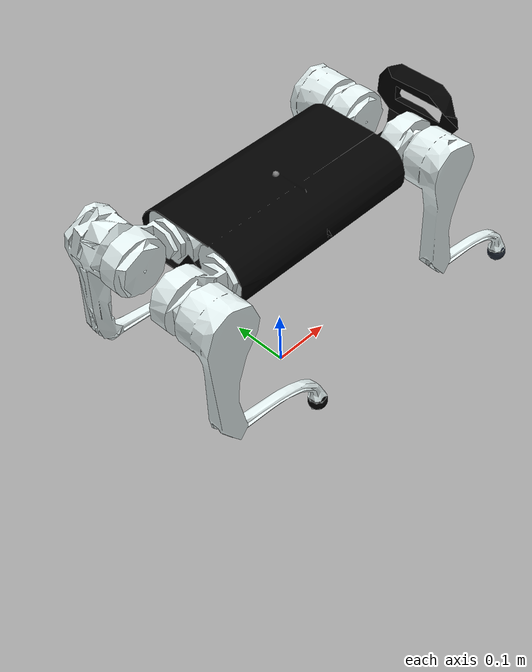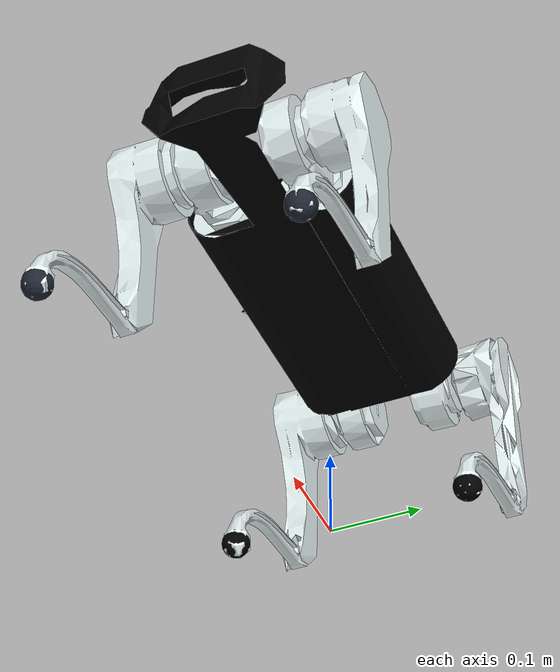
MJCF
<mujoco model="dogVLAI">
<compiler angle="radian"   autolimits="true" />

 <option cone="elliptic" impratio="100" />

  <default>
    <default class="dogVLAI">
      <geom friction="0.6"  margin="0.001" condim="1"/>
      <joint  damping="0.1" armature="0.01" frictionloss="0.2"/>
      <motor ctrlrange="-23.7 23.7"/>

      <default class="abduction">
        <joint axis="1 0 0" damping="0.1" armature="0.01" frictionloss="0.0" range="-0.873 0.8"/>
      </default>

      <default class="hip">

        <default class="front_hip">
          <joint  axis="0 1 0" damping="0.1" armature="0.01" frictionloss="0.0" range="-0.524  3.927"/>
        </default>

        <default class="back_hip">
          <joint axis="0 1 0" damping="0.1" armature="0.01" frictionloss="0.0" range="-0.524 3.927"/>
        </default>

      </default>

      <default class="knee">
        <joint axis="0 1 0" damping="0.1" armature="0.01" frictionloss="0.0" range="-1.5  0.6"/>
        <motor ctrlrange="-45.43 45.43"/>
      </default>

      <default class="visual">
        <geom type="mesh" material="white"  contype="0" conaffinity="0" group="2"/>
      </default>

      <default class="collision">
        <geom material="metal"  condim="3" contype="0" conaffinity="1" priority="1" group="1" solref="0.005 1" friction="1 0.01 0.01" />
        <equality solimp="0.99 0.999 1e-05" solref="0.005 1" />
      </default>

    </default>
  </default>

  <asset>

    <material name="metal" rgba=".9 .95 .95 1" />
    <material name="black" rgba="0 0 0 1" />
    <material name="white" rgba="1 1 1 1" />
    <material name="gray" rgba="0.671705 0.692426 0.774270 1" />
    <material name="orange" rgba="0.12 0.15 0.2 1.0" />
    <material name="red" rgba="0.89804 0.91765 0.92941 1" />
    <material name="default_material" rgba="0 0 0 1" />
    <material name="collision_material" rgba="1.0 0.28 0.1 0.9" />
    <mesh name="base_link.STL"    file="/home/vlai/rl2sim/isaacgym/resources/robots/v1/meshes/base_link.STL" />
    <mesh name="leg_FR1_link.STL" file="/home/vlai/rl2sim/isaacgym/resources/robots/v1/meshes/leg_FR1_link.STL" />
    <mesh name="leg_FR2_link.STL" file="/home/vlai/rl2sim/isaacgym/resources/robots/v1/meshes/leg_FR2_link.STL" />
    <mesh name="leg_FR3_link.STL" file="/home/vlai/rl2sim/isaacgym/resources/robots/v1/meshes/leg_FR3_link.STL" />
    <mesh name="leg_FL1_link.STL" file="/home/vlai/rl2sim/isaacgym/resources/robots/v1/meshes/leg_FL1_link.STL" />
    <mesh name="leg_FL2_link.STL" file="/home/vlai/rl2sim/isaacgym/resources/robots/v1/meshes/leg_FL2_link.STL" />
    <mesh name="leg_FL3_link.STL" file="/home/vlai/rl2sim/isaacgym/resources/robots/v1/meshes/leg_FL3_link.STL" />
    <mesh name="leg_BL1_link.STL" file="/home/vlai/rl2sim/isaacgym/resources/robots/v1/meshes/leg_BL1_link.STL" />
    <mesh name="leg_BL2_link.STL" file="/home/vlai/rl2sim/isaacgym/resources/robots/v1/meshes/leg_BL2_link.STL" />
    <mesh name="leg_BL3_link.STL" file="/home/vlai/rl2sim/isaacgym/resources/robots/v1/meshes/leg_BL3_link.STL" />
    <mesh name="leg_BR1_link.STL" file="/home/vlai/rl2sim/isaacgym/resources/robots/v1/meshes/leg_BR1_link.STL" />
    <mesh name="leg_BR2_link.STL" file="/home/vlai/rl2sim/isaacgym/resources/robots/v1/meshes/leg_BR2_link.STL" />
    <mesh name="leg_BR3_link.STL" file="/home/vlai/rl2sim/isaacgym/resources/robots/v1/meshes/leg_BR3_link.STL" />
    <mesh file="/home/vlai/rl2sim/isaacgym/resources/robots/v1/meshes/foot.obj" />
  </asset>

  <worldbody>

      <body name="base_link" pos="0 0 0.4" quat="1.0 0.0 0.0 0.0">
        <inertial pos="0.086664 -0.0025651 -0.05017"  quat="1.0 0.0 0.0 0.0" mass="3.432" diaginertia="0.0039586 0.0079714 0.00896" />
          <freejoint />
        <geom name="base_link_collision" pos="0 0 0"  quat="1.0 0.0 0.0 0.0"  material="black"   type="mesh" mesh="base_link.STL" class="collision" />
        <geom name="base_link_visual"    pos="0 0 0"  quat="1 0 0.0 0.0 "     material="black"   type="mesh" mesh="base_link.STL" class="visual" />

        <site name="imu" pos="0 0 0"/>

        <body name="FL1_hip_link" pos="0.168999872360919 0.0520307406591373 -0.0485" >
          <joint name="FL1_hip_joint" class="abduction" />
          <inertial pos="0.016891 -0.0002017 -1.0145E-12" quat="1.0 0.0 0.0 0.0"
                    mass="1.5778"
                    diaginertia="0.00168891 0.0012658 0.0010036" />
          <geom name="FL1_hip_link_collision" pos="0 0 0" quat="1.0 0.0 0.0 0.0" type="mesh" mesh="leg_FL1_link.STL" class="collision" />
          <geom name="FL1_hip_link_visual" pos="0 0 0" quat="1 0 0.0 0.0"    type="mesh" mesh="leg_FL1_link.STL" class="visual" />
          <body name="FL2_thigh_link" pos="0.06 0.0245 0" >
            <joint name="FL2_thigh_joint"  class="front_hip" />
            <inertial pos="-0.0020653 0.035858 -0.014157" quat="1.0 0.0 0.0 0.0"
                      mass="1.1111"
                      diaginertia="0.0021475 0.0025741 0.00068032" />
            <geom name="FL2_thigh_link_collision" pos="0 0 0" quat="1.0 0.0 0.0 0.0" type="mesh" mesh="leg_FL2_link.STL" class="collision" />
            <geom name="FL2_thigh_link_visual" pos="0 0 0" quat="1 0 0.0 0.0"   type="mesh" mesh="leg_FL2_link.STL" class="visual" />
            <body name="FL3_calf_link" pos="0.0025 0.0584 -0.19998" >
              <joint name="FL3_calf_joint"  class="knee" />
              <inertial pos="0.10213 0.00074994 -0.040058" quat="1.0 0.0 0.0 0.0"
                        mass="0.17626"
                        diaginertia="9.9523e-05 0.00066828 0.0005781" />
              <geom name="FL3_calf_link_collision" pos="0.0 0 0.0" quat="1.0 0.0 0.0 0.0" type="mesh" mesh="leg_FL3_link.STL" class="collision" />
              <geom name="FL3_calf_link_visual" pos="0 0 0" quat="1 0 0.0 0.0"  type="mesh" mesh="leg_FL3_link.STL" class="visual" />

              <body name="FL_foot" pos="0.171 0 -.094" >
                <inertial pos=" 0 0 0" quat="1 0 0 0"  mass="0.06" diaginertia="9.6e-06 9.6e-06 9.6e-06" />
                <geom name="FL_foot_collision" pos="0 0 0" quat="1.0 0.0 0.0 0.0"  material="orange" type="sphere" size="0.016" class="collision" />
                <geom name="FL_foot_visual" pos="0 0 0" quat="1.0 0.0 0.0 0.0"     material="black" type="sphere" size="0.015" class="visual" />
              </body>
            </body>
          </body>
        </body>
        <body name="FR1_hip_link" pos="0.168999872360919 -0.0520307406591373 -0.0485" >
          <joint name="FR1_hip_joint"  class="abduction" />
          <inertial pos="0.016891 0.0002017 -1.016E-12" quat="1.0 0.0 0.0 0.0"
                    mass="1.5778"
                    diaginertia="0.0012639 0.0012658 0.0010036" />
          <geom name="FR1_hip_link_collision" pos="0 0 0" quat="1.0 0.0 0.0 0.0" type="mesh" mesh="leg_FR1_link.STL" class="collision" />
          <geom name="FR1_hip_link_visual" pos="0 0 0" quat="1 0 0.0 0.0"    type="mesh" mesh="leg_FR1_link.STL" class="visual" />
          <body name="FR2_thigh_link" pos="0.06 -0.0245 -0.0036585" >
            <joint name="FR2_thigh_joint"  class="front_hip" />
            <inertial pos="-0.0020653 -0.035858 -0.014157" quat="1.0 0.0 0.0 0.0"
                      mass="1.1376"
                      diaginertia="0.0022579 0.0026941 0.00069032" />
            <geom name="FR2_thigh_link_collision" pos="0 0 0" quat="1.0 0.0 0.0 0.0" type="mesh" mesh="leg_FR2_link.STL" class="collision" />
            <geom name="FR2_thigh_link_visual" pos="0 0 0" quat="1 0 0.0 0.0"   type="mesh" mesh="leg_FR2_link.STL" class="visual" />
            <body name="FR3_calf_link" pos="0.0025 -0.059525 -0.19632" >
              <joint name="FR3_calf_joint"    class="knee" />
              <inertial pos="0.10213 0.00074994 -0.040058" quat="1.0 0.0 0.0 0.0"
                        mass="0.17626"
                        diaginertia="9.9523e-05 0.00066828 0.0005781" />
              <geom name="FR3_calf_link_collision" pos="0.0 0 0.0" quat="1.0 0.0 0.0 0.0" type="mesh" mesh="leg_FR3_link.STL" class="collision" />
              <geom name="FR3_calf_link_visual" pos="0 0 0" quat="1 0 0.0 0.0"     type="mesh" mesh="leg_FR3_link.STL" class="visual" />
              <body name="FR_foot" pos="0.171 0 -.094" >
                <inertial pos="0 0 0" quat="1 0 0 0"  mass="0.06" diaginertia="9.6e-06 9.6e-06 9.6e-06" />
                <geom name="FR_foot_collision" pos="0 0 0" quat="1.0 0.0 0.0 0.0"  material="orange" type="sphere" size="0.016" class="collision" />
                <geom name="FR_foot_visual" pos="0 0 0" quat="1.0 0.0 0.0 0.0"     material="black" type="sphere" size="0.015" class="visual" />
             </body>
            </body>
          </body>
        </body>
       <body name="BL1_hip_link" pos="-0.169 0.052029 -0.048525" >
          <joint name="BL1_hip_joint"    class="abduction" />
          <inertial pos="-0.016891 -0.0002017 -1.0145E-12" quat="1.0 0.0 0.0 0.0"
                    mass="1.5778"
                    diaginertia="0.0012639 0.0012658 0.0010036" />
          <geom name="BL1_hip_link_collision" pos="0 0 0" quat="1.0 0.0 0.0 0.0" type="mesh" mesh="leg_BL1_link.STL" class="collision" />
          <geom name="BL1_hip_link_visual" pos="0 0 0" quat="1 0 0.0 0.0"    type="mesh" mesh="leg_BL1_link.STL" class="visual" />
          <body name="BL2_thigh_link" pos="-0.06 0.0245 0" >
            <joint name="BL2_thigh_joint"    class="front_hip" />
            <inertial pos="-0.0020653 0.035858 -0.014157" quat="1.0 0.0 0.0 0.0"
                      mass="1.1151"
                      diaginertia="0.0022531 0.0026941 0.00069561" />
            <geom name="BL2_thigh_link_collision" pos="0 0 0" quat="1.0 0.0 0.0 0.0" type="mesh" mesh="leg_BL2_link.STL" class="collision" />
            <geom name="BL2_thigh_link_visual" pos="0 0 0" quat="1 0 0.0 0.0"    type="mesh" mesh="leg_BL2_link.STL" class="visual" />
            <body name="BL3_calf_link" pos="0.0025 0.05925 -0.19998" >
              <joint name="BL3_calf_joint"    class="knee" />
              <inertial pos="0.10213 0.00074994 -0.040058" quat="1.0 0.0 0.0 0.0"
                      mass="0.17626"
                      diaginertia="9.9523e-05 0.00066828 0.0005781" />
              <geom name="BL3_calf_link_collision" pos="0.0 0 0.0" quat="1.0 0.0 0.0 0.0" type="mesh" mesh="leg_BL3_link.STL" class="collision" />
              <geom name="BL3_calf_link_visual" pos="0 0 0" quat="1 0 0.0 0.0"    type="mesh" mesh="leg_BL3_link.STL" class="visual" />
              <body name="BL_foot" pos="0.171 0 -.094" quat="1.0 0.0 0.0 0.0">
                <inertial pos="0 0 0" quat="1 0 0 0"  mass="0.06" diaginertia="9.6e-06 9.6e-06 9.6e-06" />
                <geom name="BL_foot_collision" pos="0 0 0" quat="1.0 0.0 0.0 0.0"  material="black" type="sphere" size="0.016" class="collision" />
                <geom name="BL_foot_visual" pos="0 0 0" quat="1.0 0.0 0.0 0.0"     material="black" type="sphere" size="0.015" class="visual" />
               </body>
            </body>
          </body>
        </body>
        <body name="BR1_hip_link" pos="-0.169 -0.052029 -0.048525" >
          <joint name="BR1_hip_joint"    class="abduction" />
          <inertial pos="-0.016891 0.0002017 -1.0145E-12" quat="1.0 0.0 0.0 0.0"
                    mass="1.5778"
                    diaginertia="0.0012639 0.0012658 0.0010036" />
          <geom name="BR1_hip_link_collision" pos="0 0 0" quat="1.0 0.0 0.0 0.0" type="mesh" mesh="leg_BR1_link.STL" class="collision" />
          <geom name="BR1_hip_link_visual" pos="0 0 0" quat="1 0 0.0 0.0"   type="mesh" mesh="leg_BR1_link.STL" class="visual" />
          <body name="BR2_thigh_link" pos="-0.06 -0.0245 0" >
            <joint name="BR2_thigh_joint"    class="front_hip" />
            <inertial pos="-0.0020653 -0.035858 -0.014157" quat="1.0 0.0 0.0 0.0"
                      mass="1.1376"
                      diaginertia="0.0022531 0.0026941 0.00069561" />
            <geom name="BR2_thigh_link_collision" pos="0 0 0" quat="1.0 0.0 0.0 0.0" type="mesh" mesh="leg_BR2_link.STL" class="collision" />
            <geom name="BR2_thigh_link_visual" pos="0 0 0" quat="1 0 0.0 0.0"    type="mesh" mesh="leg_BR2_link.STL" class="visual" />
            <body name="BR3_calf_link" pos="0.0025 -0.05925 -0.19998" >
              <joint name="BR3_calf_joint"    class="knee" />
              <inertial pos="0.10213 0.00074994 -0.040058" quat="1.0 0.0 0.0 0.0"
                        mass="0.17626"
                        diaginertia="9.9523e-05 0.00066828 0.0005781" />
              <geom name="BR3_calf_link_collision" pos="0.0 0 0.0" quat="1.0 0.0 0.0 0.0" type="mesh" mesh="leg_BR3_link.STL" class="collision" />
              <geom name="BR3_calf_link_visual" pos="0 0 0" quat="1 0 0.0 0.0"    type="mesh" mesh="leg_BR3_link.STL" class="visual" />

              <body name="BR_foot" pos="0.171 0 -.094">
                <inertial pos="0 0 0" quat="1 0 0 0"  mass="0.06" diaginertia="9.6e-06 9.6e-06 9.6e-06" />
                <geom name="BR_foot_collision" pos="0 0 0" quat="1.0 0.0 0.0 0.0"  material="black" type="sphere" size="0.016" class="collision" />
                <geom name="BR_foot_visual" pos="0 0 0" quat="1.0 0.0 0.0 0.0"     material="black"  type="sphere" size="0.015" class="visual" />

              </body>
            </body>
          </body>
        </body>
      </body>

  </worldbody>
  <actuator>
      <!-- Front Left Leg -->
    <motor name="FL_hip"   joint="FL1_hip_joint"    class="abduction"/>
    <motor name="FL_thigh" joint="FL2_thigh_joint"  class="front_hip"/>
    <motor name="FL_calf"  joint="FL3_calf_joint"   class="knee"/>

    <!-- Front Right Leg -->
    <motor name="FR_hip"   joint="FR1_hip_joint"    class="abduction"/>
    <motor name="FR_thigh" joint="FR2_thigh_joint"  class="front_hip"/>
    <motor name="FR_calf"  joint="FR3_calf_joint"   class="knee"/>

    <!-- Back Left Leg -->
    <motor name="BL_hip"   joint="BL1_hip_joint"    class="abduction"/>
    <motor name="BL_thigh" joint="BL2_thigh_joint"  class="front_hip"/>
    <motor name="BL_calf"  joint="BL3_calf_joint"   class="knee"/>

    <!-- Back Right Leg -->
    <motor name="BR_hip"   joint="BR1_hip_joint"    class="abduction"/>
    <motor name="BR_thigh" joint="BR2_thigh_joint"  class="front_hip"/>
    <motor name="BR_calf"  joint="BR3_calf_joint"   class="knee"/>
  </actuator>

<contact>
    <!-- 已有的排除规则 -->
    <exclude body1="FR2_thigh_link" body2="FR3_calf_link" />
    <exclude body1="FL2_thigh_link" body2="FL3_calf_link" />
    <exclude body1="BL2_thigh_link" body2="BL3_calf_link" />
    <exclude body1="BR2_thigh_link" body2="BR3_calf_link" />

    <!-- 新增：排除 hip 和 thigh 之间的碰撞 -->
    <exclude body1="FL1_hip_link" body2="FL2_thigh_link" />
    <exclude body1="FR1_hip_link" body2="FR2_thigh_link" />
    <exclude body1="BL1_hip_link" body2="BL2_thigh_link" />
    <exclude body1="BR1_hip_link" body2="BR2_thigh_link" />

    <!-- 建议：同时排除 base_link 和所有 hip_link 之间的碰撞 -->
    <exclude body1="base_link" body2="FL1_hip_link" />
    <exclude body1="base_link" body2="FR1_hip_link" />
    <exclude body1="base_link" body2="BL1_hip_link" />
    <exclude body1="base_link" body2="BR1_hip_link" />
</contact>

    <keyframe>
    <key name="home" qpos="0 0 0.32 1 0 0 0 0 0.7 -0.7 0 0.7 -0.7 0 0.7 -0.7 0 0.7 -0.7"
      ctrl="0 0.7 -0.7  0 0.7 -0.7  0 0.7 -0.7 0 0.7 -0.7" />
  </keyframe>
</mujoco>
